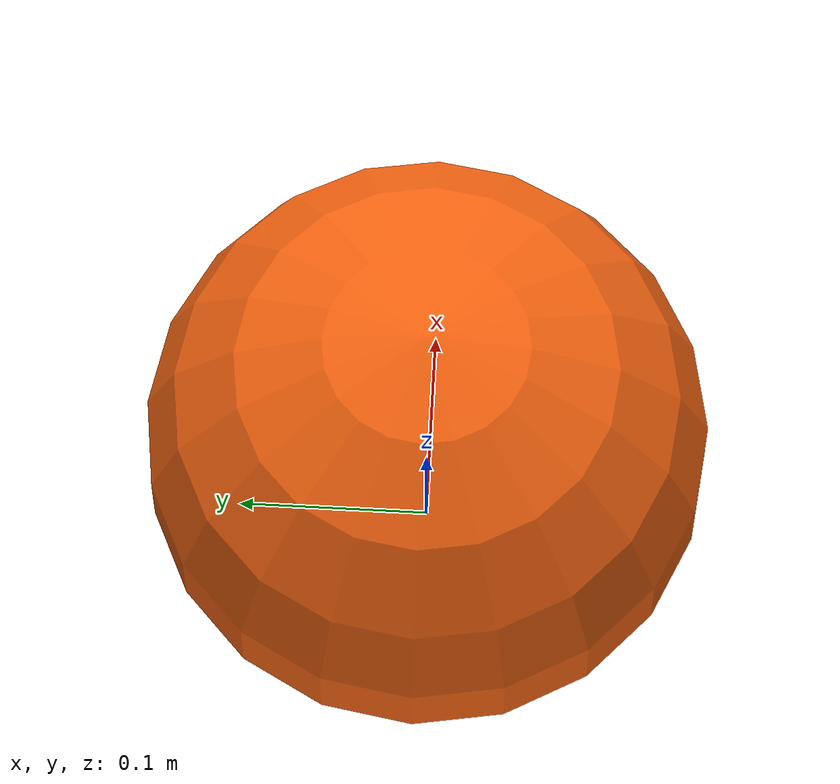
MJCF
<mujoco model="basketball">
  <worldbody>
    <body name="basketball" pos="0 0 0.123">
      <freejoint name="basketball_free"/>
      <geom name="basketball_geom" type="sphere" size="0.123" mass="0.625"
            friction="0.8 0.005 0.0001"
            solref="0.03 0.3"
            solimp="0.95 0.99 0.001 0.5 2"
            priority="1"
            rgba="0.94 0.38 0.06 1"/>
    </body>
  </worldbody>
</mujoco>
